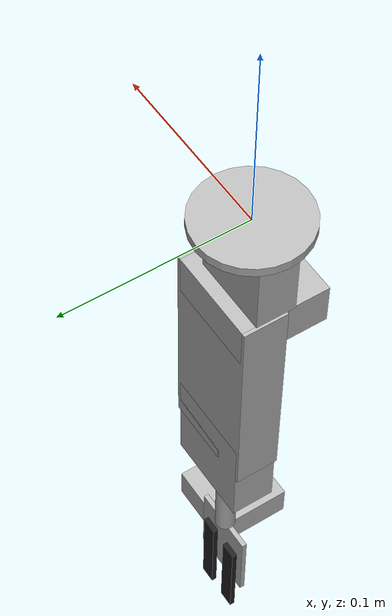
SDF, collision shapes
<sdf version='1.11'>
  <model name='manipulator'>
    <link name='base_plate'>
      <inertial>
        <pose>0.00070370370370370367 0 -0.017351851851851851 0 0 0</pose>
        <mass>0.13500000000000001</mass>
        <inertia>
          <ixx>5.6418495370037038e-05</ixx>
          <ixy>0</ixy>
          <ixz>3.149074074074075e-06</ixz>
          <iyy>6.6885393518185195e-05</iyy>
          <iyz>0</iyz>
          <izz>3.9168148148148149e-05</izz>
        </inertia>
      </inertial>
      <collision name='base_plate_collision'>
        <pose>0 0 0 0 0 0</pose>
        <geometry>
          <cylinder>
            <length>0.0050000000000000001</length>
            <radius>0.029999999999999999</radius>
          </cylinder>
        </geometry>
        <surface>
          <contact>
            <ode>
              <kp>1000000</kp>
              <kd>100</kd>
              <min_depth>0.001</min_depth>
            </ode>
          </contact>
          <friction>
            <ode>
              <mu>0.80000000000000004</mu>
              <mu2>0.80000000000000004</mu2>
            </ode>
          </friction>
        </surface>
      </collision>
      <collision name='base_plate_fixed_joint_lump__arm_motor_1_collision_1'>
        <pose>0 0 -0.024500000000000001 0 0 0</pose>
        <geometry>
          <box>
            <size>0.044999999999999998 0.021999999999999999 0.043999999999999997</size>
          </box>
        </geometry>
      </collision>
      <collision name='base_plate_fixed_joint_lump__razor_connector_collision_2'>
        <pose>0.0094999999999999998 0 -0.050500000000000003 0 0 0</pose>
        <geometry>
          <cylinder>
            <length>0.0080000000000000002</length>
            <radius>0.0054999999999999997</radius>
          </cylinder>
        </geometry>
        <surface>
          <contact>
            <ode>
              <kp>1000000</kp>
              <kd>100</kd>
            </ode>
          </contact>
          <friction>
            <ode>
              <mu>0.80000000000000004</mu>
              <mu2>0.80000000000000004</mu2>
            </ode>
          </friction>
        </surface>
      </collision>
      <visual name='base_plate_visual'>
        <pose>0 0 0 0 0 0</pose>
        <geometry>
          <cylinder>
            <length>0.0050000000000000001</length>
            <radius>0.029999999999999999</radius>
          </cylinder>
        </geometry>
      </visual>
      <visual name='base_plate_fixed_joint_lump__arm_motor_1_visual_1'>
        <pose>0 0 -0.024500000000000001 0 0 0</pose>
        <geometry>
          <box>
            <size>0.044999999999999998 0.021999999999999999 0.043999999999999997</size>
          </box>
        </geometry>
      </visual>
      <visual name='base_plate_fixed_joint_lump__razor_connector_visual_2'>
        <pose>0.0094999999999999998 0 -0.050500000000000003 0 0 0</pose>
        <geometry>
          <cylinder>
            <length>0.0080000000000000002</length>
            <radius>0.0054999999999999997</radius>
          </cylinder>
        </geometry>
      </visual>
    </link>
    <joint name='joint_1' type='revolute'>
      <pose relative_to='base_plate'>0.0094999999999999998 -0.01 -0.066500000000000004 0 0 0</pose>
      <parent>base_plate</parent>
      <child>arm_motor_2</child>
      <axis>
        <xyz>0 0 1</xyz>
        <limit>
          <lower>-3.1400000000000001</lower>
          <upper>3.1400000000000001</upper>
          <effort>2</effort>
          <velocity>5</velocity>
        </limit>
        <dynamics>
          <damping>0.10000000000000001</damping>
          <friction>0.10000000000000001</friction>
          <spring_reference>0</spring_reference>
          <spring_stiffness>0</spring_stiffness>
        </dynamics>
      </axis>
      <physics>
        <ode>
          <limit>
            <cfm>0</cfm>
            <erp>0.20000000000000001</erp>
          </limit>
        </ode>
      </physics>
      <initial_position>0.0</initial_position>
    </joint>
    <link name='arm_motor_2'>
      <pose relative_to='joint_1'>0 0 0 0 0 0</pose>
      <inertial>
        <pose>0 0 0 0 0 0</pose>
        <mass>0.082000000000000003</mass>
        <inertia>
          <ixx>2.1019333299999999e-05</ixx>
          <ixy>0</ixy>
          <ixz>0</ixz>
          <iyy>2.3130833300000001e-05</iyy>
          <iyz>0</iyz>
          <izz>3.6278166700000003e-05</izz>
        </inertia>
      </inertial>
      <collision name='arm_motor_2_collision'>
        <pose>0 0 0 0 0 0</pose>
        <geometry>
          <box>
            <size>0.052999999999999999 0.050000000000000003 0.024</size>
          </box>
        </geometry>
      </collision>
      <visual name='arm_motor_2_visual'>
        <pose>0 0 0 0 0 0</pose>
        <geometry>
          <box>
            <size>0.052999999999999999 0.050000000000000003 0.024</size>
          </box>
        </geometry>
      </visual>
    </link>
    <joint name='joint_2' type='revolute'>
      <pose relative_to='arm_motor_2'>0 0.012500000000000001 0 0 0 0</pose>
      <parent>arm_motor_2</parent>
      <child>h_arm</child>
      <axis>
        <xyz>1 0 0</xyz>
        <limit>
          <lower>-1.5700000000000001</lower>
          <upper>1.5700000000000001</upper>
          <effort>2</effort>
          <velocity>3</velocity>
        </limit>
        <dynamics>
          <damping>0.10000000000000001</damping>
          <friction>0.10000000000000001</friction>
          <spring_reference>0</spring_reference>
          <spring_stiffness>0</spring_stiffness>
        </dynamics>
      </axis>
      <physics>
        <ode>
          <limit>
            <cfm>0</cfm>
            <erp>0.20000000000000001</erp>
          </limit>
        </ode>
      </physics>
      <initial_position>0.0</initial_position>
    </joint>
    <link name='h_arm'>
      <pose relative_to='joint_2'>0 0 0 0 0 0</pose>
      <inertial>
        <pose>0 0 -0.051999999999999998 0 0 0</pose>
        <mass>0.053999999999999999</mass>
        <inertia>
          <ixx>0.0001980045</ixx>
          <ixy>0</ixy>
          <ixz>0</ixz>
          <iyy>0.0002266425</iyy>
          <iyz>0</iyz>
          <izz>3.4263e-05</izz>
        </inertia>
      </inertial>
      <collision name='h_arm_collision'>
        <pose>0 0 -0.051999999999999998 0 0 0</pose>
        <geometry>
          <box>
            <size>0.057000000000000002 0.025000000000000001 0.128</size>
          </box>
        </geometry>
        <surface>
          <contact>
            <ode>
              <kp>1000000</kp>
              <kd>100</kd>
            </ode>
          </contact>
          <friction>
            <ode>
              <mu>0.80000000000000004</mu>
              <mu2>0.80000000000000004</mu2>
            </ode>
          </friction>
        </surface>
      </collision>
      <visual name='h_arm_visual'>
        <pose>0 0 -0.051999999999999998 0 0 0</pose>
        <geometry>
          <box>
            <size>0.057000000000000002 0.025000000000000001 0.128</size>
          </box>
        </geometry>
      </visual>
    </link>
    <joint name='joint_3' type='revolute'>
      <pose relative_to='h_arm'>0 0 -0.106 0 0 0</pose>
      <parent>h_arm</parent>
      <child>arm_motor_3</child>
      <axis>
        <xyz>1 0 0</xyz>
        <limit>
          <lower>-1.5700000000000001</lower>
          <upper>1.5700000000000001</upper>
          <effort>2</effort>
          <velocity>3</velocity>
        </limit>
        <dynamics>
          <damping>0.10000000000000001</damping>
          <friction>0.10000000000000001</friction>
          <spring_reference>0</spring_reference>
          <spring_stiffness>0</spring_stiffness>
        </dynamics>
      </axis>
      <physics>
        <ode>
          <limit>
            <cfm>0</cfm>
            <erp>0.20000000000000001</erp>
          </limit>
        </ode>
      </physics>
      <initial_position>0.0</initial_position>
    </joint>
    <link name='arm_motor_3'>
      <pose relative_to='joint_3'>0 0 0 0 0 0</pose>
      <inertial>
        <pose>0.007458333333333335 -0.0073333333333333332 -0.067833333333333329 0 0 0</pose>
        <mass>0.17999999999999999</mass>
        <inertia>
          <ixx>0.00058716999993999985</ixx>
          <ixy>2.3815000000000002e-05</ixy>
          <ixz>8.1126249999999999e-05</ixz>
          <iyy>0.0006087246874999999</iyy>
          <iyz>-7.8099999999999987e-05</iyz>
          <izz>9.3361354169999998e-05</izz>
        </inertia>
      </inertial>
      <collision name='arm_motor_3_collision'>
        <pose>0 0 -0.014999999999999999 0 0 0</pose>
        <geometry>
          <box>
            <size>0.052999999999999999 0.025000000000000001 0.059999999999999998</size>
          </box>
        </geometry>
      </collision>
      <collision name='arm_motor_3_fixed_joint_lump__rod_collision_1'>
        <pose>-0.0015 0 -0.072499999999999995 0 0 0</pose>
        <geometry>
          <cylinder>
            <length>0.055</length>
            <radius>0.0060000000000000001</radius>
          </cylinder>
        </geometry>
        <surface>
          <contact>
            <ode>
              <kp>1000000</kp>
              <kd>100</kd>
            </ode>
          </contact>
          <friction>
            <ode>
              <mu>0.80000000000000004</mu>
              <mu2>0.80000000000000004</mu2>
            </ode>
          </friction>
        </surface>
      </collision>
      <collision name='arm_motor_3_fixed_joint_lump__gripper_base_collision_2'>
        <pose>-0.0015 0 -0.125 0 0 0</pose>
        <geometry>
          <box>
            <size>0.040000000000000001 0.0030000000000000001 0.050000000000000003</size>
          </box>
        </geometry>
        <surface>
          <contact>
            <ode>
              <kp>1000000</kp>
              <kd>100</kd>
            </ode>
          </contact>
          <friction>
            <ode>
              <mu>0.80000000000000004</mu>
              <mu2>0.80000000000000004</mu2>
            </ode>
          </friction>
        </surface>
      </collision>
      <collision name='arm_motor_3_fixed_joint_lump__arm_motor_4_collision_3'>
        <pose>0.025499999999999998 -0.024 -0.127 0 0 0</pose>
        <geometry>
          <box>
            <size>0.043999999999999997 0.044999999999999998 0.02</size>
          </box>
        </geometry>
      </collision>
      <visual name='arm_motor_3_visual'>
        <pose>0 0 -0.014999999999999999 0 0 0</pose>
        <geometry>
          <box>
            <size>0.052999999999999999 0.025000000000000001 0.059999999999999998</size>
          </box>
        </geometry>
      </visual>
      <visual name='arm_motor_3_fixed_joint_lump__rod_visual_1'>
        <pose>-0.0015 0 -0.072499999999999995 0 0 0</pose>
        <geometry>
          <cylinder>
            <length>0.055</length>
            <radius>0.0060000000000000001</radius>
          </cylinder>
        </geometry>
      </visual>
      <visual name='arm_motor_3_fixed_joint_lump__gripper_base_visual_2'>
        <pose>-0.0015 0 -0.125 0 0 0</pose>
        <geometry>
          <box>
            <size>0.040000000000000001 0.0030000000000000001 0.050000000000000003</size>
          </box>
        </geometry>
      </visual>
      <visual name='arm_motor_3_fixed_joint_lump__arm_motor_4_visual_3'>
        <pose>0.025499999999999998 -0.024 -0.127 0 0 0</pose>
        <geometry>
          <box>
            <size>0.043999999999999997 0.044999999999999998 0.02</size>
          </box>
        </geometry>
      </visual>
    </link>
    <joint name='joint_4' type='revolute'>
      <pose relative_to='arm_motor_3'>-0.0115 0.0030000000000000001 -0.125 0 0 0</pose>
      <parent>arm_motor_3</parent>
      <child>gripper_L</child>
      <axis>
        <xyz>0 1 0</xyz>
        <limit>
          <lower>-0.001</lower>
          <upper>1.2</upper>
          <effort>1</effort>
          <velocity>2</velocity>
        </limit>
        <dynamics>
          <damping>0.050000000000000003</damping>
          <friction>0.050000000000000003</friction>
          <spring_reference>0</spring_reference>
          <spring_stiffness>0</spring_stiffness>
        </dynamics>
      </axis>
      <physics>
        <ode>
          <limit>
            <cfm>0</cfm>
            <erp>0.20000000000000001</erp>
          </limit>
        </ode>
      </physics>
      <initial_position>0.01</initial_position>
    </joint>
    <link name='gripper_L'>
      <pose relative_to='joint_4'>0 0 0 0 0 0</pose>
      <inertial>
        <pose>0 0 -0.021999999999999999 0 0 0</pose>
        <mass>0.02</mass>
        <inertia>
          <ixx>1.5695000000000001e-05</ixx>
          <ixy>0</ixy>
          <ixz>0</ixz>
          <iyy>1.58466667e-05</iyy>
          <iyz>0</iyz>
          <izz>1.8166666699999999e-07</izz>
        </inertia>
      </inertial>
      <collision name='gripper_L_collision'>
        <pose>0 0 -0.021999999999999999 0 0 0</pose>
        <geometry>
          <box>
            <size>0.01 0.0030000000000000001 0.059999999999999998</size>
          </box>
        </geometry>
        <surface>
          <contact>
            <ode>
              <kp>1000000</kp>
              <kd>100</kd>
            </ode>
          </contact>
          <friction>
            <ode>
              <mu>1</mu>
              <mu2>1</mu2>
            </ode>
          </friction>
        </surface>
      </collision>
      <visual name='gripper_L_visual'>
        <pose>-0.0089999999999999993 -0.002 -0.074999999999999997 -1.570796326794897 -1.5707963267948966 0</pose>
        <geometry>
          <mesh>
            <scale>0.0015 0.0015 0.0015</scale>
            <uri>model://manipulator_description/meshes/left_finger.STL</uri>
          </mesh>
        </geometry>
        <material>
          <diffuse>0.125 0.125 0.125 1</diffuse>
          <ambient>0.125 0.125 0.125 1</ambient>
        </material>
      </visual>
    </link>
    <joint name='joint_5' type='revolute'>
      <pose relative_to='arm_motor_3'>0.0085000000000000006 0.0030000000000000001 -0.125 0 0 0</pose>
      <parent>arm_motor_3</parent>
      <child>gripper_R</child>
      <axis>
        <xyz>0 1 0</xyz>
        <mimic joint='joint_4'>
          <multiplier>-1</multiplier>
          <offset>0</offset>
          <reference>0</reference>
        </mimic>
        <limit>
          <lower>-1.2</lower>
          <upper>0.001</upper>
          <effort>1</effort>
          <velocity>2</velocity>
        </limit>
        <dynamics>
          <damping>0.050000000000000003</damping>
          <friction>0.050000000000000003</friction>
          <spring_reference>0</spring_reference>
          <spring_stiffness>0</spring_stiffness>
        </dynamics>
      </axis>
      <physics>
        <ode>
          <limit>
            <cfm>0</cfm>
            <erp>0.20000000000000001</erp>
          </limit>
        </ode>
      </physics>
      <initial_position>-0.01</initial_position>
    </joint>
    <link name='gripper_R'>
      <pose relative_to='joint_5'>0 0 0 0 0 0</pose>
      <inertial>
        <pose>0 0 -0.021999999999999999 0 0 0</pose>
        <mass>0.02</mass>
        <inertia>
          <ixx>1.5695000000000001e-05</ixx>
          <ixy>0</ixy>
          <ixz>0</ixz>
          <iyy>1.58466667e-05</iyy>
          <iyz>0</iyz>
          <izz>1.8166666699999999e-07</izz>
        </inertia>
      </inertial>
      <collision name='gripper_R_collision'>
        <pose>0 0 -0.021999999999999999 0 0 0</pose>
        <geometry>
          <box>
            <size>0.01 0.0030000000000000001 0.059999999999999998</size>
          </box>
        </geometry>
        <surface>
          <contact>
            <ode>
              <kp>1000000</kp>
              <kd>100</kd>
            </ode>
          </contact>
          <friction>
            <ode>
              <mu>1</mu>
              <mu2>1</mu2>
            </ode>
          </friction>
        </surface>
      </collision>
      <visual name='gripper_R_visual'>
        <pose>-0.010999999999999999 -0.002 -0.074999999999999997 -1.570796326794897 -1.5707963267948966 0</pose>
        <geometry>
          <mesh>
            <scale>0.0015 0.0015 0.0015</scale>
            <uri>model://manipulator_description/meshes/right_finger.STL</uri>
          </mesh>
        </geometry>
        <material>
          <diffuse>0.125 0.125 0.125 1</diffuse>
          <ambient>0.125 0.125 0.125 1</ambient>
        </material>
      </visual>
    </link>
    <plugin name='gz_ros2_control::GazeboSimROS2ControlPlugin' filename='gz_ros2_control-system'>
      <parameters>/home/lahiru/newlocalrepo/rl-aerial-manipulator/Manipulator/install/manipulator_controller/share/manipulator_controller/config/manipulator_controllers.yaml</parameters>
      <controller_manager_name>controller_manager</controller_manager_name>
    </plugin>
    <frame name='joint_motor1_to_connector' attached_to='arm_motor_1'>
      <pose>0.0094999999999999998 0 -0.025999999999999999 0 0 0</pose>
    </frame>
    <frame name='razor_connector' attached_to='joint_motor1_to_connector'>
      <pose>0 0 0 0 0 0</pose>
    </frame>
    <frame name='joint_gripperbase_to_motor4' attached_to='gripper_base'>
      <pose>0.027 -0.024 -0.002 0 0 0</pose>
    </frame>
    <frame name='arm_motor_4' attached_to='joint_gripperbase_to_motor4'>
      <pose>0 0 0 0 0 0</pose>
    </frame>
    <frame name='joint_rod_to_gripper_base' attached_to='rod'>
      <pose>0 0 -0.052499999999999998 0 0 0</pose>
    </frame>
    <frame name='gripper_base' attached_to='joint_rod_to_gripper_base'>
      <pose>0 0 0 0 0 0</pose>
    </frame>
    <frame name='joint_motor3_to_rod' attached_to='arm_motor_3'>
      <pose>-0.0015 0 -0.072499999999999995 0 0 0</pose>
    </frame>
    <frame name='rod' attached_to='joint_motor3_to_rod'>
      <pose>0 0 0 0 0 0</pose>
    </frame>
    <frame name='joint_motor_1' attached_to='base_plate'>
      <pose>0 0 -0.024500000000000001 0 0 0</pose>
    </frame>
    <frame name='arm_motor_1' attached_to='joint_motor_1'>
      <pose>0 0 0 0 0 0</pose>
    </frame>
  </model>
</sdf>
